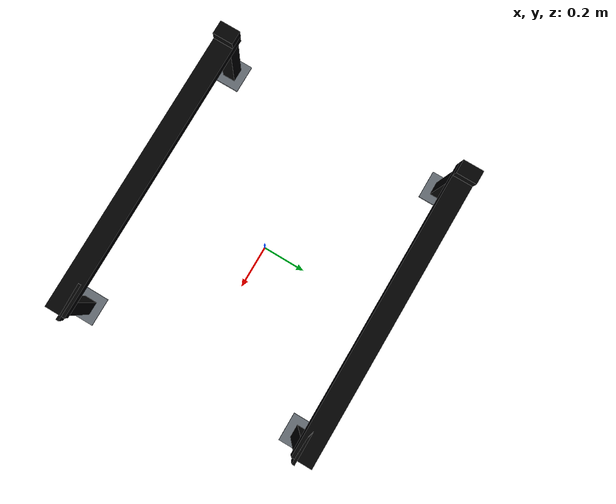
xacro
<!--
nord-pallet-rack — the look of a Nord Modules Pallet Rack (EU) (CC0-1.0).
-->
<?xml version="1.0"?>
<robot xmlns:xacro="http://www.ros.org/wiki/xacro" name="nord-pallet-rack-stand">
  <xacro:include filename="../../equipment-common/visual/primitives.xacro"/>
  <xacro:arg name="length" default="1.3"/>
  <xacro:arg name="width" default="1.178"/>
  <xacro:arg name="height" default="0.389"/>
  <xacro:arg name="support" default="0.348"/>
  <xacro:arg name="inner" default="1.0"/>
  <xacro:arg name="leg" default="0.06"/>
  <xacro:property name="l" value="$(arg length)"/>
  <xacro:property name="w" value="$(arg width)"/>
  <xacro:property name="h" value="$(arg height)"/>
  <xacro:property name="s" value="$(arg support)"/>
  <xacro:property name="inner" value="$(arg inner)"/>
  <xacro:property name="a" value="$(arg leg)"/>
  <xacro:property name="rail_w" value="${(w - inner) / 2}"/>
  <xacro:property name="rail_y" value="${inner / 2 + rail_w / 2}"/>
  <xacro:property name="rail_t" value="0.04"/>
  <material name="jet_black"><color rgba="0.012 0.012 0.013 1"/></material>
  <material name="zinc"><color rgba="0.43 0.46 0.49 1"/></material>
  <material name="marker"><color rgba="0.85 0.55 0.02 1"/></material>
  <link name="root"/>
  <xacro:macro name="section" params="sy tag">
    <!-- posts at both ends of the rail, on zinc foot plates with anchor heads -->
    <xacro:box name="post_front_${tag}" size="${a} ${a} ${s - rail_t}" xyz="${l/2 - a/2} ${sy*rail_y} ${(s - rail_t)/2}" mat="jet_black"/>
    <xacro:box name="post_rear_${tag}" size="${a} ${a} ${s - rail_t}" xyz="${-l/2 + a/2} ${sy*rail_y} ${(s - rail_t)/2}" mat="jet_black"/>
    <xacro:box name="foot_front_${tag}" size="${a*2.2} ${a*2.2} 0.008" xyz="${l/2 - a/2} ${sy*rail_y} 0.004" mat="zinc"/>
    <xacro:box name="foot_rear_${tag}" size="${a*2.2} ${a*2.2} 0.008" xyz="${-l/2 + a/2} ${sy*rail_y} 0.004" mat="zinc"/>
    <!-- the support rail the pallet's edge rests on, its top at `support` -->
    <xacro:box name="rail_${tag}" size="${l} ${rail_w} ${rail_t}" xyz="0 ${sy*rail_y} ${s - rail_t/2}" mat="jet_black"/>
    <!-- the rear stop rising to the overall height -->
    <xacro:box name="stop_${tag}" size="${a} ${rail_w} ${h - s}" xyz="${-l/2 + a/2} ${sy*rail_y} ${(h + s)/2}" mat="jet_black"/>
    <xacro:box name="stop_marker_${tag}" size="0.004 ${rail_w*0.7} 0.02" xyz="${-l/2 - 0.002} ${sy*rail_y} ${h - 0.02}" mat="marker"/>
    <!-- the centring flare at the entry end, angled in from the rail's inner edge -->
    <xacro:box name="flare_${tag}" size="0.16 0.012 0.05" xyz="${l/2 - 0.06} ${sy*(inner/2 + 0.02)} ${s - 0.025}" mat="jet_black"/>
  </xacro:macro>
  <xacro:section sy="-1" tag="r"/>
  <xacro:section sy="1" tag="l"/>
</robot>

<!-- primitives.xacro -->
<!-- CC0. Visual-only primitives, each with a stable removable resident name. -->
<robot xmlns:xacro="http://www.ros.org/wiki/xacro">
  <xacro:macro name="box" params="name size xyz mat">
    <link name="${name}"><visual><origin xyz="${xyz}"/>
      <geometry><box size="${size}"/></geometry><material name="${mat}"/>
    </visual></link>
    <joint name="j_${name}" type="fixed"><parent link="root"/><child link="${name}"/></joint>
  </xacro:macro>
  <xacro:macro name="cylinder" params="name radius length xyz rpy mat">
    <link name="${name}"><visual><origin xyz="${xyz}" rpy="${rpy}"/>
      <geometry><cylinder radius="${radius}" length="${length}"/></geometry><material name="${mat}"/>
    </visual></link>
    <joint name="j_${name}" type="fixed"><parent link="root"/><child link="${name}"/></joint>
  </xacro:macro>
  <xacro:macro name="mesh" params="name file xyz mat">
    <link name="${name}"><visual><origin xyz="${xyz}"/>
      <geometry><mesh filename="${file}"/></geometry><material name="${mat}"/>
    </visual></link>
    <joint name="j_${name}" type="fixed"><parent link="root"/><child link="${name}"/></joint>
  </xacro:macro>
</robot>
